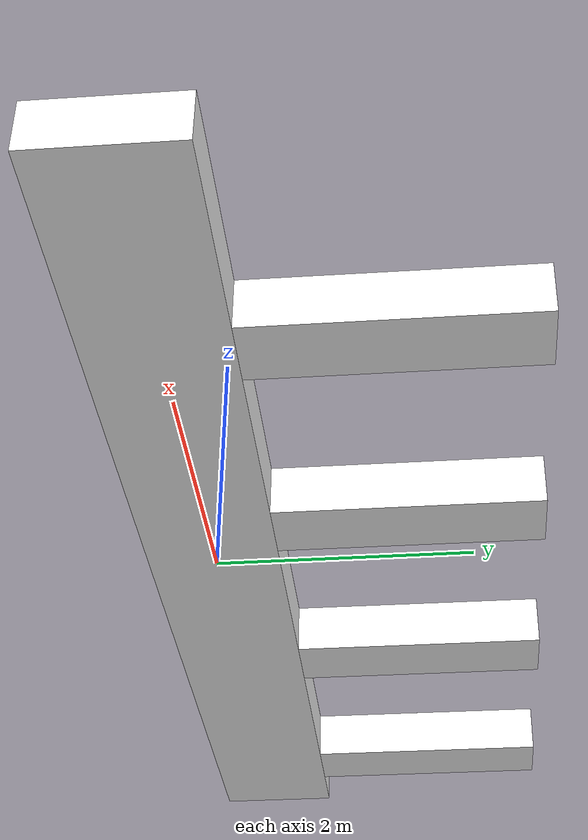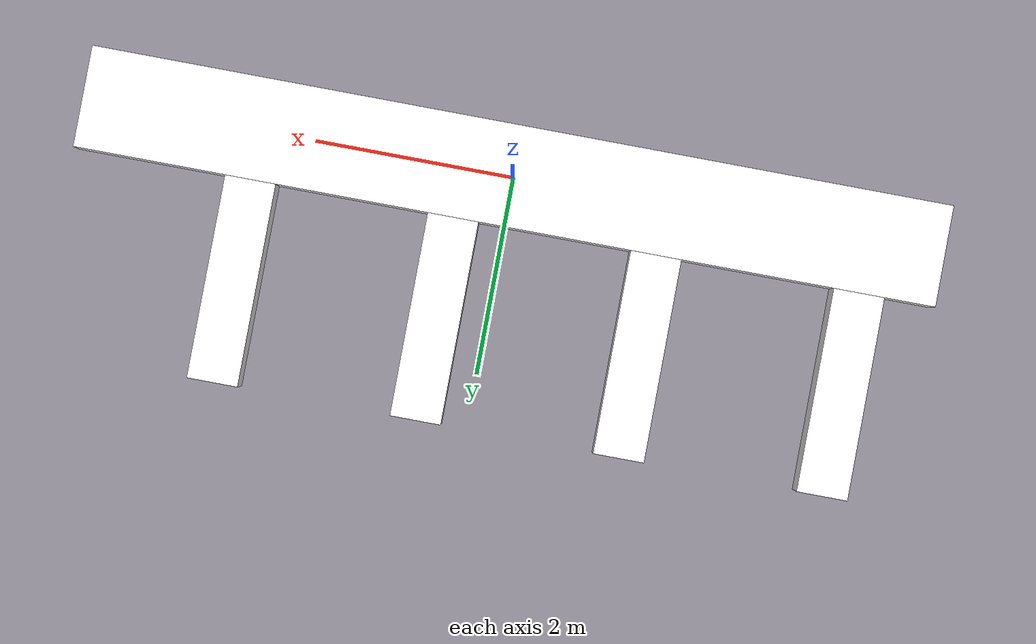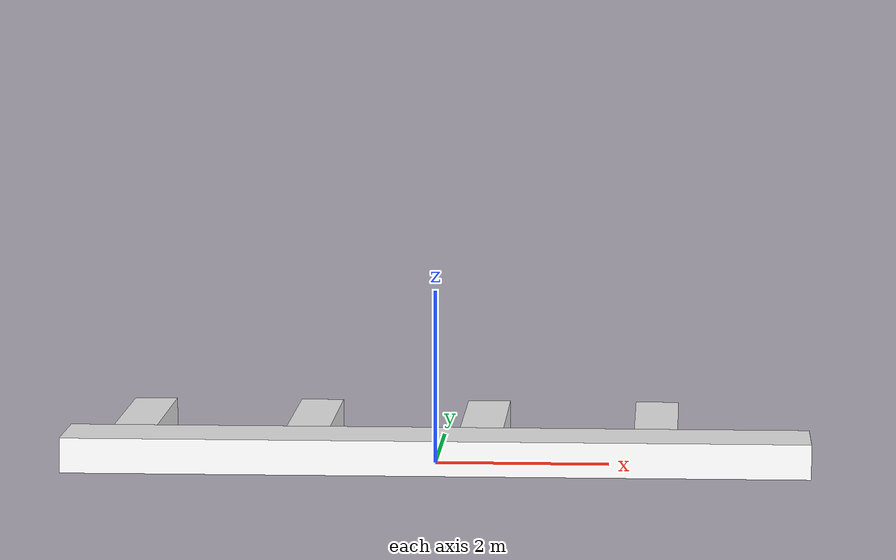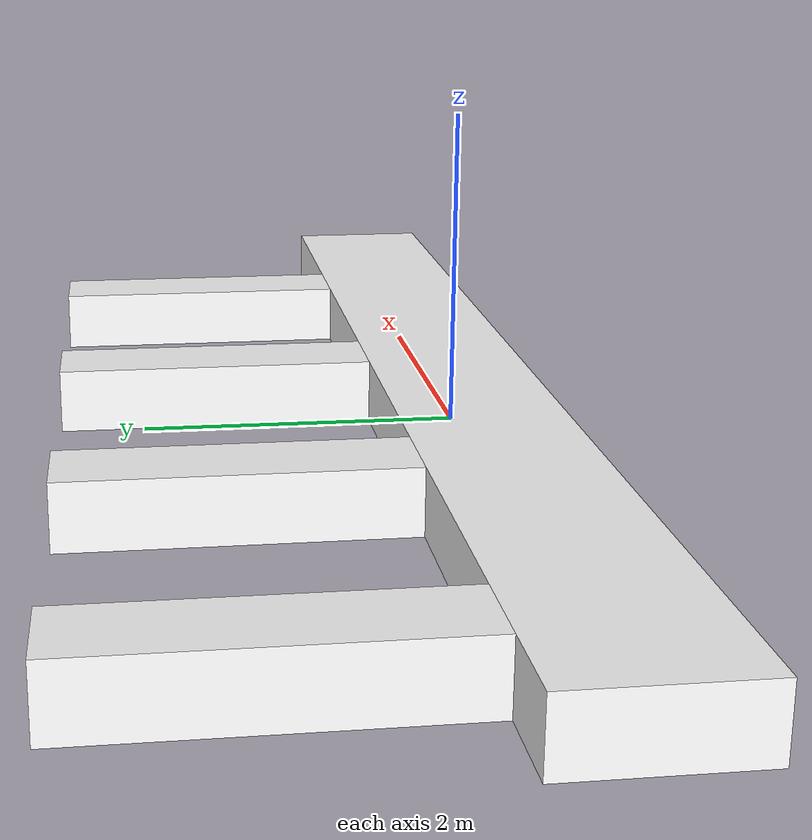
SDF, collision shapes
<?xml version="1.0"?>
<sdf version="1.9">
  <model name="roboboat_dock_s">
    <static>true</static>
    <link name="link">
      <collision name="pier_collision">
        <pose>0 0 0.127 0 0 0</pose>
        <geometry>
          <box><size>8.636 1.016 0.4064</size></box>
        </geometry>
      </collision>
      <collision name="tine_0_collision">
        <pose>-3.556 1.524 0.127 0 0 0</pose>
        <geometry>
          <box><size>0.508 2.032 0.4064</size></box>
        </geometry>
      </collision>
      <collision name="tine_1_collision">
        <pose>-1.524 1.524 0.127 0 0 0</pose>
        <geometry>
          <box><size>0.508 2.032 0.4064</size></box>
        </geometry>
      </collision>
      <collision name="tine_2_collision">
        <pose>0.508 1.524 0.127 0 0 0</pose>
        <geometry>
          <box><size>0.508 2.032 0.4064</size></box>
        </geometry>
      </collision>
      <collision name="tine_3_collision">
        <pose>2.54 1.524 0.127 0 0 0</pose>
        <geometry>
          <box><size>0.508 2.032 0.4064</size></box>
        </geometry>
      </collision>
      <visual name="cube_0">
        <pose>-4.064 -0.254 0.3302 0 0 0</pose>
        <geometry>
          <mesh>
            <uri>model://roboboat_dock_s/meshes/dock_cube.dae</uri>
            <scale>1.016 1.016 1.0015</scale>
          </mesh>
        </geometry>
            <material>
              <diffuse>1.0 1.0 1.0</diffuse>
              <specular>1.0 1.0 1.0</specular>
              <pbr>
                <metal>
                  <albedo_map>model://dock_block_4x4/mesh/DockCubes_Albedo.png</albedo_map>
                  <normal_map>model://dock_block_4x4/mesh/DockCubes_Normal.png</normal_map>
                  <roughness_map>model://dock_block_4x4/mesh/DockCubes_Roughness.png</roughness_map>
                  <metalness_map>model://dock_block_4x4/mesh/DockCubes_Metalness.png</metalness_map>
                </metal>
              </pbr>
            </material>
      </visual>
      <visual name="cube_1">
        <pose>-4.064 0.254 0.3302 0 0 0</pose>
        <geometry>
          <mesh>
            <uri>model://roboboat_dock_s/meshes/dock_cube.dae</uri>
            <scale>1.016 1.016 1.0015</scale>
          </mesh>
        </geometry>
            <material>
              <diffuse>1.0 1.0 1.0</diffuse>
              <specular>1.0 1.0 1.0</specular>
              <pbr>
                <metal>
                  <albedo_map>model://dock_block_4x4/mesh/DockCubes_Albedo.png</albedo_map>
                  <normal_map>model://dock_block_4x4/mesh/DockCubes_Normal.png</normal_map>
                  <roughness_map>model://dock_block_4x4/mesh/DockCubes_Roughness.png</roughness_map>
                  <metalness_map>model://dock_block_4x4/mesh/DockCubes_Metalness.png</metalness_map>
                </metal>
              </pbr>
            </material>
      </visual>
      <visual name="cube_2">
        <pose>-3.556 -0.254 0.3302 0 0 0</pose>
        <geometry>
          <mesh>
            <uri>model://roboboat_dock_s/meshes/dock_cube.dae</uri>
            <scale>1.016 1.016 1.0015</scale>
          </mesh>
        </geometry>
            <material>
              <diffuse>1.0 1.0 1.0</diffuse>
              <specular>1.0 1.0 1.0</specular>
              <pbr>
                <metal>
                  <albedo_map>model://dock_block_4x4/mesh/DockCubes_Albedo.png</albedo_map>
                  <normal_map>model://dock_block_4x4/mesh/DockCubes_Normal.png</normal_map>
                  <roughness_map>model://dock_block_4x4/mesh/DockCubes_Roughness.png</roughness_map>
                  <metalness_map>model://dock_block_4x4/mesh/DockCubes_Metalness.png</metalness_map>
                </metal>
              </pbr>
            </material>
      </visual>
      <visual name="cube_3">
        <pose>-3.556 0.254 0.3302 0 0 0</pose>
        <geometry>
          <mesh>
            <uri>model://roboboat_dock_s/meshes/dock_cube.dae</uri>
            <scale>1.016 1.016 1.0015</scale>
          </mesh>
        </geometry>
            <material>
              <diffuse>1.0 1.0 1.0</diffuse>
              <specular>1.0 1.0 1.0</specular>
              <pbr>
                <metal>
                  <albedo_map>model://dock_block_4x4/mesh/DockCubes_Albedo.png</albedo_map>
                  <normal_map>model://dock_block_4x4/mesh/DockCubes_Normal.png</normal_map>
                  <roughness_map>model://dock_block_4x4/mesh/DockCubes_Roughness.png</roughness_map>
                  <metalness_map>model://dock_block_4x4/mesh/DockCubes_Metalness.png</metalness_map>
                </metal>
              </pbr>
            </material>
      </visual>
      <visual name="cube_4">
        <pose>-3.048 -0.254 0.3302 0 0 0</pose>
        <geometry>
          <mesh>
            <uri>model://roboboat_dock_s/meshes/dock_cube.dae</uri>
            <scale>1.016 1.016 1.0015</scale>
          </mesh>
        </geometry>
            <material>
              <diffuse>1.0 1.0 1.0</diffuse>
              <specular>1.0 1.0 1.0</specular>
              <pbr>
                <metal>
                  <albedo_map>model://dock_block_4x4/mesh/DockCubes_Albedo.png</albedo_map>
                  <normal_map>model://dock_block_4x4/mesh/DockCubes_Normal.png</normal_map>
                  <roughness_map>model://dock_block_4x4/mesh/DockCubes_Roughness.png</roughness_map>
                  <metalness_map>model://dock_block_4x4/mesh/DockCubes_Metalness.png</metalness_map>
                </metal>
              </pbr>
            </material>
      </visual>
      <visual name="cube_5">
        <pose>-3.048 0.254 0.3302 0 0 0</pose>
        <geometry>
          <mesh>
            <uri>model://roboboat_dock_s/meshes/dock_cube.dae</uri>
            <scale>1.016 1.016 1.0015</scale>
          </mesh>
        </geometry>
            <material>
              <diffuse>1.0 1.0 1.0</diffuse>
              <specular>1.0 1.0 1.0</specular>
              <pbr>
                <metal>
                  <albedo_map>model://dock_block_4x4/mesh/DockCubes_Albedo.png</albedo_map>
                  <normal_map>model://dock_block_4x4/mesh/DockCubes_Normal.png</normal_map>
                  <roughness_map>model://dock_block_4x4/mesh/DockCubes_Roughness.png</roughness_map>
                  <metalness_map>model://dock_block_4x4/mesh/DockCubes_Metalness.png</metalness_map>
                </metal>
              </pbr>
            </material>
      </visual>
      <visual name="cube_6">
        <pose>-2.54 -0.254 0.3302 0 0 0</pose>
        <geometry>
          <mesh>
            <uri>model://roboboat_dock_s/meshes/dock_cube.dae</uri>
            <scale>1.016 1.016 1.0015</scale>
          </mesh>
        </geometry>
            <material>
              <diffuse>1.0 1.0 1.0</diffuse>
              <specular>1.0 1.0 1.0</specular>
              <pbr>
                <metal>
                  <albedo_map>model://dock_block_4x4/mesh/DockCubes_Albedo.png</albedo_map>
                  <normal_map>model://dock_block_4x4/mesh/DockCubes_Normal.png</normal_map>
                  <roughness_map>model://dock_block_4x4/mesh/DockCubes_Roughness.png</roughness_map>
                  <metalness_map>model://dock_block_4x4/mesh/DockCubes_Metalness.png</metalness_map>
                </metal>
              </pbr>
            </material>
      </visual>
      <visual name="cube_7">
        <pose>-2.54 0.254 0.3302 0 0 0</pose>
        <geometry>
          <mesh>
            <uri>model://roboboat_dock_s/meshes/dock_cube.dae</uri>
            <scale>1.016 1.016 1.0015</scale>
          </mesh>
        </geometry>
            <material>
              <diffuse>1.0 1.0 1.0</diffuse>
              <specular>1.0 1.0 1.0</specular>
              <pbr>
                <metal>
                  <albedo_map>model://dock_block_4x4/mesh/DockCubes_Albedo.png</albedo_map>
                  <normal_map>model://dock_block_4x4/mesh/DockCubes_Normal.png</normal_map>
                  <roughness_map>model://dock_block_4x4/mesh/DockCubes_Roughness.png</roughness_map>
                  <metalness_map>model://dock_block_4x4/mesh/DockCubes_Metalness.png</metalness_map>
                </metal>
              </pbr>
            </material>
      </visual>
      <visual name="cube_8">
        <pose>-2.032 -0.254 0.3302 0 0 0</pose>
        <geometry>
          <mesh>
            <uri>model://roboboat_dock_s/meshes/dock_cube.dae</uri>
            <scale>1.016 1.016 1.0015</scale>
          </mesh>
        </geometry>
            <material>
              <diffuse>1.0 1.0 1.0</diffuse>
              <specular>1.0 1.0 1.0</specular>
              <pbr>
                <metal>
                  <albedo_map>model://dock_block_4x4/mesh/DockCubes_Albedo.png</albedo_map>
                  <normal_map>model://dock_block_4x4/mesh/DockCubes_Normal.png</normal_map>
                  <roughness_map>model://dock_block_4x4/mesh/DockCubes_Roughness.png</roughness_map>
                  <metalness_map>model://dock_block_4x4/mesh/DockCubes_Metalness.png</metalness_map>
                </metal>
              </pbr>
            </material>
      </visual>
      <visual name="cube_9">
        <pose>-2.032 0.254 0.3302 0 0 0</pose>
        <geometry>
          <mesh>
            <uri>model://roboboat_dock_s/meshes/dock_cube.dae</uri>
            <scale>1.016 1.016 1.0015</scale>
          </mesh>
        </geometry>
            <material>
              <diffuse>1.0 1.0 1.0</diffuse>
              <specular>1.0 1.0 1.0</specular>
              <pbr>
                <metal>
                  <albedo_map>model://dock_block_4x4/mesh/DockCubes_Albedo.png</albedo_map>
                  <normal_map>model://dock_block_4x4/mesh/DockCubes_Normal.png</normal_map>
                  <roughness_map>model://dock_block_4x4/mesh/DockCubes_Roughness.png</roughness_map>
                  <metalness_map>model://dock_block_4x4/mesh/DockCubes_Metalness.png</metalness_map>
                </metal>
              </pbr>
            </material>
      </visual>
      <visual name="cube_10">
        <pose>-1.524 -0.254 0.3302 0 0 0</pose>
        <geometry>
          <mesh>
            <uri>model://roboboat_dock_s/meshes/dock_cube.dae</uri>
            <scale>1.016 1.016 1.0015</scale>
          </mesh>
        </geometry>
            <material>
              <diffuse>1.0 1.0 1.0</diffuse>
              <specular>1.0 1.0 1.0</specular>
              <pbr>
                <metal>
                  <albedo_map>model://dock_block_4x4/mesh/DockCubes_Albedo.png</albedo_map>
                  <normal_map>model://dock_block_4x4/mesh/DockCubes_Normal.png</normal_map>
                  <roughness_map>model://dock_block_4x4/mesh/DockCubes_Roughness.png</roughness_map>
                  <metalness_map>model://dock_block_4x4/mesh/DockCubes_Metalness.png</metalness_map>
                </metal>
              </pbr>
            </material>
      </visual>
      <visual name="cube_11">
        <pose>-1.524 0.254 0.3302 0 0 0</pose>
        <geometry>
          <mesh>
            <uri>model://roboboat_dock_s/meshes/dock_cube.dae</uri>
            <scale>1.016 1.016 1.0015</scale>
          </mesh>
        </geometry>
            <material>
              <diffuse>1.0 1.0 1.0</diffuse>
              <specular>1.0 1.0 1.0</specular>
              <pbr>
                <metal>
                  <albedo_map>model://dock_block_4x4/mesh/DockCubes_Albedo.png</albedo_map>
                  <normal_map>model://dock_block_4x4/mesh/DockCubes_Normal.png</normal_map>
                  <roughness_map>model://dock_block_4x4/mesh/DockCubes_Roughness.png</roughness_map>
                  <metalness_map>model://dock_block_4x4/mesh/DockCubes_Metalness.png</metalness_map>
                </metal>
              </pbr>
            </material>
      </visual>
      <visual name="cube_12">
        <pose>-1.016 -0.254 0.3302 0 0 0</pose>
        <geometry>
          <mesh>
            <uri>model://roboboat_dock_s/meshes/dock_cube.dae</uri>
            <scale>1.016 1.016 1.0015</scale>
          </mesh>
        </geometry>
            <material>
              <diffuse>1.0 1.0 1.0</diffuse>
              <specular>1.0 1.0 1.0</specular>
              <pbr>
                <metal>
                  <albedo_map>model://dock_block_4x4/mesh/DockCubes_Albedo.png</albedo_map>
                  <normal_map>model://dock_block_4x4/mesh/DockCubes_Normal.png</normal_map>
                  <roughness_map>model://dock_block_4x4/mesh/DockCubes_Roughness.png</roughness_map>
                  <metalness_map>model://dock_block_4x4/mesh/DockCubes_Metalness.png</metalness_map>
                </metal>
              </pbr>
            </material>
      </visual>
      <visual name="cube_13">
        <pose>-1.016 0.254 0.3302 0 0 0</pose>
        <geometry>
          <mesh>
            <uri>model://roboboat_dock_s/meshes/dock_cube.dae</uri>
            <scale>1.016 1.016 1.0015</scale>
          </mesh>
        </geometry>
            <material>
              <diffuse>1.0 1.0 1.0</diffuse>
              <specular>1.0 1.0 1.0</specular>
              <pbr>
                <metal>
                  <albedo_map>model://dock_block_4x4/mesh/DockCubes_Albedo.png</albedo_map>
                  <normal_map>model://dock_block_4x4/mesh/DockCubes_Normal.png</normal_map>
                  <roughness_map>model://dock_block_4x4/mesh/DockCubes_Roughness.png</roughness_map>
                  <metalness_map>model://dock_block_4x4/mesh/DockCubes_Metalness.png</metalness_map>
                </metal>
              </pbr>
            </material>
      </visual>
      <visual name="cube_14">
        <pose>-0.508 -0.254 0.3302 0 0 0</pose>
        <geometry>
          <mesh>
            <uri>model://roboboat_dock_s/meshes/dock_cube.dae</uri>
            <scale>1.016 1.016 1.0015</scale>
          </mesh>
        </geometry>
            <material>
              <diffuse>1.0 1.0 1.0</diffuse>
              <specular>1.0 1.0 1.0</specular>
              <pbr>
                <metal>
                  <albedo_map>model://dock_block_4x4/mesh/DockCubes_Albedo.png</albedo_map>
                  <normal_map>model://dock_block_4x4/mesh/DockCubes_Normal.png</normal_map>
                  <roughness_map>model://dock_block_4x4/mesh/DockCubes_Roughness.png</roughness_map>
                  <metalness_map>model://dock_block_4x4/mesh/DockCubes_Metalness.png</metalness_map>
                </metal>
              </pbr>
            </material>
      </visual>
      <visual name="cube_15">
        <pose>-0.508 0.254 0.3302 0 0 0</pose>
        <geometry>
          <mesh>
            <uri>model://roboboat_dock_s/meshes/dock_cube.dae</uri>
            <scale>1.016 1.016 1.0015</scale>
          </mesh>
        </geometry>
            <material>
              <diffuse>1.0 1.0 1.0</diffuse>
              <specular>1.0 1.0 1.0</specular>
              <pbr>
                <metal>
                  <albedo_map>model://dock_block_4x4/mesh/DockCubes_Albedo.png</albedo_map>
                  <normal_map>model://dock_block_4x4/mesh/DockCubes_Normal.png</normal_map>
                  <roughness_map>model://dock_block_4x4/mesh/DockCubes_Roughness.png</roughness_map>
                  <metalness_map>model://dock_block_4x4/mesh/DockCubes_Metalness.png</metalness_map>
                </metal>
              </pbr>
            </material>
      </visual>
      <visual name="cube_16">
        <pose>0 -0.254 0.3302 0 0 0</pose>
        <geometry>
          <mesh>
            <uri>model://roboboat_dock_s/meshes/dock_cube.dae</uri>
            <scale>1.016 1.016 1.0015</scale>
          </mesh>
        </geometry>
            <material>
              <diffuse>1.0 1.0 1.0</diffuse>
              <specular>1.0 1.0 1.0</specular>
              <pbr>
                <metal>
                  <albedo_map>model://dock_block_4x4/mesh/DockCubes_Albedo.png</albedo_map>
                  <normal_map>model://dock_block_4x4/mesh/DockCubes_Normal.png</normal_map>
                  <roughness_map>model://dock_block_4x4/mesh/DockCubes_Roughness.png</roughness_map>
                  <metalness_map>model://dock_block_4x4/mesh/DockCubes_Metalness.png</metalness_map>
                </metal>
              </pbr>
            </material>
      </visual>
      <visual name="cube_17">
        <pose>0 0.254 0.3302 0 0 0</pose>
        <geometry>
          <mesh>
            <uri>model://roboboat_dock_s/meshes/dock_cube.dae</uri>
            <scale>1.016 1.016 1.0015</scale>
          </mesh>
        </geometry>
            <material>
              <diffuse>1.0 1.0 1.0</diffuse>
              <specular>1.0 1.0 1.0</specular>
              <pbr>
                <metal>
                  <albedo_map>model://dock_block_4x4/mesh/DockCubes_Albedo.png</albedo_map>
                  <normal_map>model://dock_block_4x4/mesh/DockCubes_Normal.png</normal_map>
                  <roughness_map>model://dock_block_4x4/mesh/DockCubes_Roughness.png</roughness_map>
                  <metalness_map>model://dock_block_4x4/mesh/DockCubes_Metalness.png</metalness_map>
                </metal>
              </pbr>
            </material>
      </visual>
      <visual name="cube_18">
        <pose>0.508 -0.254 0.3302 0 0 0</pose>
        <geometry>
          <mesh>
            <uri>model://roboboat_dock_s/meshes/dock_cube.dae</uri>
            <scale>1.016 1.016 1.0015</scale>
          </mesh>
        </geometry>
            <material>
              <diffuse>1.0 1.0 1.0</diffuse>
              <specular>1.0 1.0 1.0</specular>
              <pbr>
                <metal>
                  <albedo_map>model://dock_block_4x4/mesh/DockCubes_Albedo.png</albedo_map>
                  <normal_map>model://dock_block_4x4/mesh/DockCubes_Normal.png</normal_map>
                  <roughness_map>model://dock_block_4x4/mesh/DockCubes_Roughness.png</roughness_map>
                  <metalness_map>model://dock_block_4x4/mesh/DockCubes_Metalness.png</metalness_map>
                </metal>
              </pbr>
            </material>
      </visual>
      <visual name="cube_19">
        <pose>0.508 0.254 0.3302 0 0 0</pose>
        <geometry>
          <mesh>
            <uri>model://roboboat_dock_s/meshes/dock_cube.dae</uri>
            <scale>1.016 1.016 1.0015</scale>
          </mesh>
        </geometry>
            <material>
              <diffuse>1.0 1.0 1.0</diffuse>
              <specular>1.0 1.0 1.0</specular>
              <pbr>
                <metal>
                  <albedo_map>model://dock_block_4x4/mesh/DockCubes_Albedo.png</albedo_map>
                  <normal_map>model://dock_block_4x4/mesh/DockCubes_Normal.png</normal_map>
                  <roughness_map>model://dock_block_4x4/mesh/DockCubes_Roughness.png</roughness_map>
                  <metalness_map>model://dock_block_4x4/mesh/DockCubes_Metalness.png</metalness_map>
                </metal>
              </pbr>
            </material>
      </visual>
      <visual name="cube_20">
        <pose>1.016 -0.254 0.3302 0 0 0</pose>
        <geometry>
          <mesh>
            <uri>model://roboboat_dock_s/meshes/dock_cube.dae</uri>
            <scale>1.016 1.016 1.0015</scale>
          </mesh>
        </geometry>
            <material>
              <diffuse>1.0 1.0 1.0</diffuse>
              <specular>1.0 1.0 1.0</specular>
              <pbr>
                <metal>
                  <albedo_map>model://dock_block_4x4/mesh/DockCubes_Albedo.png</albedo_map>
                  <normal_map>model://dock_block_4x4/mesh/DockCubes_Normal.png</normal_map>
                  <roughness_map>model://dock_block_4x4/mesh/DockCubes_Roughness.png</roughness_map>
                  <metalness_map>model://dock_block_4x4/mesh/DockCubes_Metalness.png</metalness_map>
                </metal>
              </pbr>
            </material>
      </visual>
      <visual name="cube_21">
        <pose>1.016 0.254 0.3302 0 0 0</pose>
        <geometry>
          <mesh>
            <uri>model://roboboat_dock_s/meshes/dock_cube.dae</uri>
            <scale>1.016 1.016 1.0015</scale>
          </mesh>
        </geometry>
            <material>
              <diffuse>1.0 1.0 1.0</diffuse>
              <specular>1.0 1.0 1.0</specular>
              <pbr>
                <metal>
                  <albedo_map>model://dock_block_4x4/mesh/DockCubes_Albedo.png</albedo_map>
                  <normal_map>model://dock_block_4x4/mesh/DockCubes_Normal.png</normal_map>
                  <roughness_map>model://dock_block_4x4/mesh/DockCubes_Roughness.png</roughness_map>
                  <metalness_map>model://dock_block_4x4/mesh/DockCubes_Metalness.png</metalness_map>
                </metal>
              </pbr>
            </material>
      </visual>
      <visual name="cube_22">
        <pose>1.524 -0.254 0.3302 0 0 0</pose>
        <geometry>
          <mesh>
            <uri>model://roboboat_dock_s/meshes/dock_cube.dae</uri>
            <scale>1.016 1.016 1.0015</scale>
          </mesh>
        </geometry>
            <material>
              <diffuse>1.0 1.0 1.0</diffuse>
              <specular>1.0 1.0 1.0</specular>
              <pbr>
                <metal>
                  <albedo_map>model://dock_block_4x4/mesh/DockCubes_Albedo.png</albedo_map>
                  <normal_map>model://dock_block_4x4/mesh/DockCubes_Normal.png</normal_map>
                  <roughness_map>model://dock_block_4x4/mesh/DockCubes_Roughness.png</roughness_map>
                  <metalness_map>model://dock_block_4x4/mesh/DockCubes_Metalness.png</metalness_map>
                </metal>
              </pbr>
            </material>
      </visual>
      <visual name="cube_23">
        <pose>1.524 0.254 0.3302 0 0 0</pose>
        <geometry>
          <mesh>
            <uri>model://roboboat_dock_s/meshes/dock_cube.dae</uri>
            <scale>1.016 1.016 1.0015</scale>
          </mesh>
        </geometry>
            <material>
              <diffuse>1.0 1.0 1.0</diffuse>
              <specular>1.0 1.0 1.0</specular>
              <pbr>
                <metal>
                  <albedo_map>model://dock_block_4x4/mesh/DockCubes_Albedo.png</albedo_map>
                  <normal_map>model://dock_block_4x4/mesh/DockCubes_Normal.png</normal_map>
                  <roughness_map>model://dock_block_4x4/mesh/DockCubes_Roughness.png</roughness_map>
                  <metalness_map>model://dock_block_4x4/mesh/DockCubes_Metalness.png</metalness_map>
                </metal>
              </pbr>
            </material>
      </visual>
      <visual name="cube_24">
        <pose>2.032 -0.254 0.3302 0 0 0</pose>
        <geometry>
          <mesh>
            <uri>model://roboboat_dock_s/meshes/dock_cube.dae</uri>
            <scale>1.016 1.016 1.0015</scale>
          </mesh>
        </geometry>
            <material>
              <diffuse>1.0 1.0 1.0</diffuse>
              <specular>1.0 1.0 1.0</specular>
              <pbr>
                <metal>
                  <albedo_map>model://dock_block_4x4/mesh/DockCubes_Albedo.png</albedo_map>
                  <normal_map>model://dock_block_4x4/mesh/DockCubes_Normal.png</normal_map>
                  <roughness_map>model://dock_block_4x4/mesh/DockCubes_Roughness.png</roughness_map>
                  <metalness_map>model://dock_block_4x4/mesh/DockCubes_Metalness.png</metalness_map>
                </metal>
              </pbr>
            </material>
      </visual>
      <visual name="cube_25">
        <pose>2.032 0.254 0.3302 0 0 0</pose>
        <geometry>
          <mesh>
            <uri>model://roboboat_dock_s/meshes/dock_cube.dae</uri>
            <scale>1.016 1.016 1.0015</scale>
          </mesh>
        </geometry>
            <material>
              <diffuse>1.0 1.0 1.0</diffuse>
              <specular>1.0 1.0 1.0</specular>
              <pbr>
                <metal>
                  <albedo_map>model://dock_block_4x4/mesh/DockCubes_Albedo.png</albedo_map>
                  <normal_map>model://dock_block_4x4/mesh/DockCubes_Normal.png</normal_map>
                  <roughness_map>model://dock_block_4x4/mesh/DockCubes_Roughness.png</roughness_map>
                  <metalness_map>model://dock_block_4x4/mesh/DockCubes_Metalness.png</metalness_map>
                </metal>
              </pbr>
            </material>
      </visual>
      <visual name="cube_26">
        <pose>2.54 -0.254 0.3302 0 0 0</pose>
        <geometry>
          <mesh>
            <uri>model://roboboat_dock_s/meshes/dock_cube.dae</uri>
            <scale>1.016 1.016 1.0015</scale>
          </mesh>
        </geometry>
            <material>
              <diffuse>1.0 1.0 1.0</diffuse>
              <specular>1.0 1.0 1.0</specular>
              <pbr>
                <metal>
                  <albedo_map>model://dock_block_4x4/mesh/DockCubes_Albedo.png</albedo_map>
                  <normal_map>model://dock_block_4x4/mesh/DockCubes_Normal.png</normal_map>
                  <roughness_map>model://dock_block_4x4/mesh/DockCubes_Roughness.png</roughness_map>
                  <metalness_map>model://dock_block_4x4/mesh/DockCubes_Metalness.png</metalness_map>
                </metal>
              </pbr>
            </material>
      </visual>
      <visual name="cube_27">
        <pose>2.54 0.254 0.3302 0 0 0</pose>
        <geometry>
          <mesh>
            <uri>model://roboboat_dock_s/meshes/dock_cube.dae</uri>
            <scale>1.016 1.016 1.0015</scale>
          </mesh>
        </geometry>
            <material>
              <diffuse>1.0 1.0 1.0</diffuse>
              <specular>1.0 1.0 1.0</specular>
              <pbr>
                <metal>
                  <albedo_map>model://dock_block_4x4/mesh/DockCubes_Albedo.png</albedo_map>
                  <normal_map>model://dock_block_4x4/mesh/DockCubes_Normal.png</normal_map>
                  <roughness_map>model://dock_block_4x4/mesh/DockCubes_Roughness.png</roughness_map>
                  <metalness_map>model://dock_block_4x4/mesh/DockCubes_Metalness.png</metalness_map>
                </metal>
              </pbr>
            </material>
      </visual>
      <visual name="cube_28">
        <pose>3.048 -0.254 0.3302 0 0 0</pose>
        <geometry>
          <mesh>
            <uri>model://roboboat_dock_s/meshes/dock_cube.dae</uri>
            <scale>1.016 1.016 1.0015</scale>
          </mesh>
        </geometry>
            <material>
              <diffuse>1.0 1.0 1.0</diffuse>
              <specular>1.0 1.0 1.0</specular>
              <pbr>
                <metal>
                  <albedo_map>model://dock_block_4x4/mesh/DockCubes_Albedo.png</albedo_map>
                  <normal_map>model://dock_block_4x4/mesh/DockCubes_Normal.png</normal_map>
                  <roughness_map>model://dock_block_4x4/mesh/DockCubes_Roughness.png</roughness_map>
                  <metalness_map>model://dock_block_4x4/mesh/DockCubes_Metalness.png</metalness_map>
                </metal>
              </pbr>
            </material>
      </visual>
      <visual name="cube_29">
        <pose>3.048 0.254 0.3302 0 0 0</pose>
        <geometry>
          <mesh>
            <uri>model://roboboat_dock_s/meshes/dock_cube.dae</uri>
            <scale>1.016 1.016 1.0015</scale>
          </mesh>
        </geometry>
            <material>
              <diffuse>1.0 1.0 1.0</diffuse>
              <specular>1.0 1.0 1.0</specular>
              <pbr>
                <metal>
                  <albedo_map>model://dock_block_4x4/mesh/DockCubes_Albedo.png</albedo_map>
                  <normal_map>model://dock_block_4x4/mesh/DockCubes_Normal.png</normal_map>
                  <roughness_map>model://dock_block_4x4/mesh/DockCubes_Roughness.png</roughness_map>
                  <metalness_map>model://dock_block_4x4/mesh/DockCubes_Metalness.png</metalness_map>
                </metal>
              </pbr>
            </material>
      </visual>
      <visual name="cube_30">
        <pose>3.556 -0.254 0.3302 0 0 0</pose>
        <geometry>
          <mesh>
            <uri>model://roboboat_dock_s/meshes/dock_cube.dae</uri>
            <scale>1.016 1.016 1.0015</scale>
          </mesh>
        </geometry>
            <material>
              <diffuse>1.0 1.0 1.0</diffuse>
              <specular>1.0 1.0 1.0</specular>
              <pbr>
                <metal>
                  <albedo_map>model://dock_block_4x4/mesh/DockCubes_Albedo.png</albedo_map>
                  <normal_map>model://dock_block_4x4/mesh/DockCubes_Normal.png</normal_map>
                  <roughness_map>model://dock_block_4x4/mesh/DockCubes_Roughness.png</roughness_map>
                  <metalness_map>model://dock_block_4x4/mesh/DockCubes_Metalness.png</metalness_map>
                </metal>
              </pbr>
            </material>
      </visual>
      <visual name="cube_31">
        <pose>3.556 0.254 0.3302 0 0 0</pose>
        <geometry>
          <mesh>
            <uri>model://roboboat_dock_s/meshes/dock_cube.dae</uri>
            <scale>1.016 1.016 1.0015</scale>
          </mesh>
        </geometry>
            <material>
              <diffuse>1.0 1.0 1.0</diffuse>
              <specular>1.0 1.0 1.0</specular>
              <pbr>
                <metal>
                  <albedo_map>model://dock_block_4x4/mesh/DockCubes_Albedo.png</albedo_map>
                  <normal_map>model://dock_block_4x4/mesh/DockCubes_Normal.png</normal_map>
                  <roughness_map>model://dock_block_4x4/mesh/DockCubes_Roughness.png</roughness_map>
                  <metalness_map>model://dock_block_4x4/mesh/DockCubes_Metalness.png</metalness_map>
                </metal>
              </pbr>
            </material>
      </visual>
      <visual name="cube_32">
        <pose>4.064 -0.254 0.3302 0 0 0</pose>
        <geometry>
          <mesh>
            <uri>model://roboboat_dock_s/meshes/dock_cube.dae</uri>
            <scale>1.016 1.016 1.0015</scale>
          </mesh>
        </geometry>
            <material>
              <diffuse>1.0 1.0 1.0</diffuse>
              <specular>1.0 1.0 1.0</specular>
              <pbr>
                <metal>
                  <albedo_map>model://dock_block_4x4/mesh/DockCubes_Albedo.png</albedo_map>
                  <normal_map>model://dock_block_4x4/mesh/DockCubes_Normal.png</normal_map>
                  <roughness_map>model://dock_block_4x4/mesh/DockCubes_Roughness.png</roughness_map>
                  <metalness_map>model://dock_block_4x4/mesh/DockCubes_Metalness.png</metalness_map>
                </metal>
              </pbr>
            </material>
      </visual>
      <visual name="cube_33">
        <pose>4.064 0.254 0.3302 0 0 0</pose>
        <geometry>
          <mesh>
            <uri>model://roboboat_dock_s/meshes/dock_cube.dae</uri>
            <scale>1.016 1.016 1.0015</scale>
          </mesh>
        </geometry>
            <material>
              <diffuse>1.0 1.0 1.0</diffuse>
              <specular>1.0 1.0 1.0</specular>
              <pbr>
                <metal>
                  <albedo_map>model://dock_block_4x4/mesh/DockCubes_Albedo.png</albedo_map>
                  <normal_map>model://dock_block_4x4/mesh/DockCubes_Normal.png</normal_map>
                  <roughness_map>model://dock_block_4x4/mesh/DockCubes_Roughness.png</roughness_map>
                  <metalness_map>model://dock_block_4x4/mesh/DockCubes_Metalness.png</metalness_map>
                </metal>
              </pbr>
            </material>
      </visual>
      <visual name="cube_34">
        <pose>-3.556 0.762 0.3302 0 0 0</pose>
        <geometry>
          <mesh>
            <uri>model://roboboat_dock_s/meshes/dock_cube.dae</uri>
            <scale>1.016 1.016 1.0015</scale>
          </mesh>
        </geometry>
            <material>
              <diffuse>1.0 1.0 1.0</diffuse>
              <specular>1.0 1.0 1.0</specular>
              <pbr>
                <metal>
                  <albedo_map>model://dock_block_4x4/mesh/DockCubes_Albedo.png</albedo_map>
                  <normal_map>model://dock_block_4x4/mesh/DockCubes_Normal.png</normal_map>
                  <roughness_map>model://dock_block_4x4/mesh/DockCubes_Roughness.png</roughness_map>
                  <metalness_map>model://dock_block_4x4/mesh/DockCubes_Metalness.png</metalness_map>
                </metal>
              </pbr>
            </material>
      </visual>
      <visual name="cube_35">
        <pose>-3.556 1.27 0.3302 0 0 0</pose>
        <geometry>
          <mesh>
            <uri>model://roboboat_dock_s/meshes/dock_cube.dae</uri>
            <scale>1.016 1.016 1.0015</scale>
          </mesh>
        </geometry>
            <material>
              <diffuse>1.0 1.0 1.0</diffuse>
              <specular>1.0 1.0 1.0</specular>
              <pbr>
                <metal>
                  <albedo_map>model://dock_block_4x4/mesh/DockCubes_Albedo.png</albedo_map>
                  <normal_map>model://dock_block_4x4/mesh/DockCubes_Normal.png</normal_map>
                  <roughness_map>model://dock_block_4x4/mesh/DockCubes_Roughness.png</roughness_map>
                  <metalness_map>model://dock_block_4x4/mesh/DockCubes_Metalness.png</metalness_map>
                </metal>
              </pbr>
            </material>
      </visual>
      <visual name="cube_36">
        <pose>-3.556 1.778 0.3302 0 0 0</pose>
        <geometry>
          <mesh>
            <uri>model://roboboat_dock_s/meshes/dock_cube.dae</uri>
            <scale>1.016 1.016 1.0015</scale>
          </mesh>
        </geometry>
            <material>
              <diffuse>1.0 1.0 1.0</diffuse>
              <specular>1.0 1.0 1.0</specular>
              <pbr>
                <metal>
                  <albedo_map>model://dock_block_4x4/mesh/DockCubes_Albedo.png</albedo_map>
                  <normal_map>model://dock_block_4x4/mesh/DockCubes_Normal.png</normal_map>
                  <roughness_map>model://dock_block_4x4/mesh/DockCubes_Roughness.png</roughness_map>
                  <metalness_map>model://dock_block_4x4/mesh/DockCubes_Metalness.png</metalness_map>
                </metal>
              </pbr>
            </material>
      </visual>
      <visual name="cube_37">
        <pose>-3.556 2.286 0.3302 0 0 0</pose>
        <geometry>
          <mesh>
            <uri>model://roboboat_dock_s/meshes/dock_cube.dae</uri>
            <scale>1.016 1.016 1.0015</scale>
          </mesh>
        </geometry>
            <material>
              <diffuse>1.0 1.0 1.0</diffuse>
              <specular>1.0 1.0 1.0</specular>
              <pbr>
                <metal>
                  <albedo_map>model://dock_block_4x4/mesh/DockCubes_Albedo.png</albedo_map>
                  <normal_map>model://dock_block_4x4/mesh/DockCubes_Normal.png</normal_map>
                  <roughness_map>model://dock_block_4x4/mesh/DockCubes_Roughness.png</roughness_map>
                  <metalness_map>model://dock_block_4x4/mesh/DockCubes_Metalness.png</metalness_map>
                </metal>
              </pbr>
            </material>
      </visual>
      <visual name="cube_38">
        <pose>-1.524 0.762 0.3302 0 0 0</pose>
        <geometry>
          <mesh>
            <uri>model://roboboat_dock_s/meshes/dock_cube.dae</uri>
            <scale>1.016 1.016 1.0015</scale>
          </mesh>
        </geometry>
            <material>
              <diffuse>1.0 1.0 1.0</diffuse>
              <specular>1.0 1.0 1.0</specular>
              <pbr>
                <metal>
                  <albedo_map>model://dock_block_4x4/mesh/DockCubes_Albedo.png</albedo_map>
                  <normal_map>model://dock_block_4x4/mesh/DockCubes_Normal.png</normal_map>
                  <roughness_map>model://dock_block_4x4/mesh/DockCubes_Roughness.png</roughness_map>
                  <metalness_map>model://dock_block_4x4/mesh/DockCubes_Metalness.png</metalness_map>
                </metal>
              </pbr>
            </material>
      </visual>
      <visual name="cube_39">
        <pose>-1.524 1.27 0.3302 0 0 0</pose>
        <geometry>
          <mesh>
            <uri>model://roboboat_dock_s/meshes/dock_cube.dae</uri>
            <scale>1.016 1.016 1.0015</scale>
          </mesh>
        </geometry>
            <material>
              <diffuse>1.0 1.0 1.0</diffuse>
              <specular>1.0 1.0 1.0</specular>
              <pbr>
                <metal>
                  <albedo_map>model://dock_block_4x4/mesh/DockCubes_Albedo.png</albedo_map>
                  <normal_map>model://dock_block_4x4/mesh/DockCubes_Normal.png</normal_map>
                  <roughness_map>model://dock_block_4x4/mesh/DockCubes_Roughness.png</roughness_map>
                  <metalness_map>model://dock_block_4x4/mesh/DockCubes_Metalness.png</metalness_map>
                </metal>
              </pbr>
            </material>
      </visual>
      <visual name="cube_40">
        <pose>-1.524 1.778 0.3302 0 0 0</pose>
        <geometry>
          <mesh>
            <uri>model://roboboat_dock_s/meshes/dock_cube.dae</uri>
            <scale>1.016 1.016 1.0015</scale>
          </mesh>
        </geometry>
            <material>
              <diffuse>1.0 1.0 1.0</diffuse>
              <specular>1.0 1.0 1.0</specular>
              <pbr>
                <metal>
                  <albedo_map>model://dock_block_4x4/mesh/DockCubes_Albedo.png</albedo_map>
                  <normal_map>model://dock_block_4x4/mesh/DockCubes_Normal.png</normal_map>
                  <roughness_map>model://dock_block_4x4/mesh/DockCubes_Roughness.png</roughness_map>
                  <metalness_map>model://dock_block_4x4/mesh/DockCubes_Metalness.png</metalness_map>
                </metal>
              </pbr>
            </material>
      </visual>
      <visual name="cube_41">
        <pose>-1.524 2.286 0.3302 0 0 0</pose>
        <geometry>
          <mesh>
            <uri>model://roboboat_dock_s/meshes/dock_cube.dae</uri>
            <scale>1.016 1.016 1.0015</scale>
          </mesh>
        </geometry>
            <material>
              <diffuse>1.0 1.0 1.0</diffuse>
              <specular>1.0 1.0 1.0</specular>
              <pbr>
                <metal>
                  <albedo_map>model://dock_block_4x4/mesh/DockCubes_Albedo.png</albedo_map>
                  <normal_map>model://dock_block_4x4/mesh/DockCubes_Normal.png</normal_map>
                  <roughness_map>model://dock_block_4x4/mesh/DockCubes_Roughness.png</roughness_map>
                  <metalness_map>model://dock_block_4x4/mesh/DockCubes_Metalness.png</metalness_map>
                </metal>
              </pbr>
            </material>
      </visual>
      <visual name="cube_42">
        <pose>0.508 0.762 0.3302 0 0 0</pose>
        <geometry>
          <mesh>
            <uri>model://roboboat_dock_s/meshes/dock_cube.dae</uri>
            <scale>1.016 1.016 1.0015</scale>
          </mesh>
        </geometry>
            <material>
              <diffuse>1.0 1.0 1.0</diffuse>
              <specular>1.0 1.0 1.0</specular>
              <pbr>
                <metal>
                  <albedo_map>model://dock_block_4x4/mesh/DockCubes_Albedo.png</albedo_map>
                  <normal_map>model://dock_block_4x4/mesh/DockCubes_Normal.png</normal_map>
                  <roughness_map>model://dock_block_4x4/mesh/DockCubes_Roughness.png</roughness_map>
                  <metalness_map>model://dock_block_4x4/mesh/DockCubes_Metalness.png</metalness_map>
                </metal>
              </pbr>
            </material>
      </visual>
      <visual name="cube_43">
        <pose>0.508 1.27 0.3302 0 0 0</pose>
        <geometry>
          <mesh>
            <uri>model://roboboat_dock_s/meshes/dock_cube.dae</uri>
            <scale>1.016 1.016 1.0015</scale>
          </mesh>
        </geometry>
            <material>
              <diffuse>1.0 1.0 1.0</diffuse>
              <specular>1.0 1.0 1.0</specular>
              <pbr>
                <metal>
                  <albedo_map>model://dock_block_4x4/mesh/DockCubes_Albedo.png</albedo_map>
                  <normal_map>model://dock_block_4x4/mesh/DockCubes_Normal.png</normal_map>
                  <roughness_map>model://dock_block_4x4/mesh/DockCubes_Roughness.png</roughness_map>
                  <metalness_map>model://dock_block_4x4/mesh/DockCubes_Metalness.png</metalness_map>
                </metal>
              </pbr>
            </material>
      </visual>
      <visual name="cube_44">
        <pose>0.508 1.778 0.3302 0 0 0</pose>
        <geometry>
          <mesh>
            <uri>model://roboboat_dock_s/meshes/dock_cube.dae</uri>
            <scale>1.016 1.016 1.0015</scale>
          </mesh>
        </geometry>
            <material>
              <diffuse>1.0 1.0 1.0</diffuse>
              <specular>1.0 1.0 1.0</specular>
              <pbr>
                <metal>
                  <albedo_map>model://dock_block_4x4/mesh/DockCubes_Albedo.png</albedo_map>
                  <normal_map>model://dock_block_4x4/mesh/DockCubes_Normal.png</normal_map>
                  <roughness_map>model://dock_block_4x4/mesh/DockCubes_Roughness.png</roughness_map>
                  <metalness_map>model://dock_block_4x4/mesh/DockCubes_Metalness.png</metalness_map>
                </metal>
              </pbr>
            </material>
      </visual>
      <visual name="cube_45">
        <pose>0.508 2.286 0.3302 0 0 0</pose>
        <geometry>
          <mesh>
            <uri>model://roboboat_dock_s/meshes/dock_cube.dae</uri>
            <scale>1.016 1.016 1.0015</scale>
          </mesh>
        </geometry>
            <material>
              <diffuse>1.0 1.0 1.0</diffuse>
              <specular>1.0 1.0 1.0</specular>
              <pbr>
                <metal>
                  <albedo_map>model://dock_block_4x4/mesh/DockCubes_Albedo.png</albedo_map>
                  <normal_map>model://dock_block_4x4/mesh/DockCubes_Normal.png</normal_map>
                  <roughness_map>model://dock_block_4x4/mesh/DockCubes_Roughness.png</roughness_map>
                  <metalness_map>model://dock_block_4x4/mesh/DockCubes_Metalness.png</metalness_map>
                </metal>
              </pbr>
            </material>
      </visual>
      <visual name="cube_46">
        <pose>2.54 0.762 0.3302 0 0 0</pose>
        <geometry>
          <mesh>
            <uri>model://roboboat_dock_s/meshes/dock_cube.dae</uri>
            <scale>1.016 1.016 1.0015</scale>
          </mesh>
        </geometry>
            <material>
              <diffuse>1.0 1.0 1.0</diffuse>
              <specular>1.0 1.0 1.0</specular>
              <pbr>
                <metal>
                  <albedo_map>model://dock_block_4x4/mesh/DockCubes_Albedo.png</albedo_map>
                  <normal_map>model://dock_block_4x4/mesh/DockCubes_Normal.png</normal_map>
                  <roughness_map>model://dock_block_4x4/mesh/DockCubes_Roughness.png</roughness_map>
                  <metalness_map>model://dock_block_4x4/mesh/DockCubes_Metalness.png</metalness_map>
                </metal>
              </pbr>
            </material>
      </visual>
      <visual name="cube_47">
        <pose>2.54 1.27 0.3302 0 0 0</pose>
        <geometry>
          <mesh>
            <uri>model://roboboat_dock_s/meshes/dock_cube.dae</uri>
            <scale>1.016 1.016 1.0015</scale>
          </mesh>
        </geometry>
            <material>
              <diffuse>1.0 1.0 1.0</diffuse>
              <specular>1.0 1.0 1.0</specular>
              <pbr>
                <metal>
                  <albedo_map>model://dock_block_4x4/mesh/DockCubes_Albedo.png</albedo_map>
                  <normal_map>model://dock_block_4x4/mesh/DockCubes_Normal.png</normal_map>
                  <roughness_map>model://dock_block_4x4/mesh/DockCubes_Roughness.png</roughness_map>
                  <metalness_map>model://dock_block_4x4/mesh/DockCubes_Metalness.png</metalness_map>
                </metal>
              </pbr>
            </material>
      </visual>
      <visual name="cube_48">
        <pose>2.54 1.778 0.3302 0 0 0</pose>
        <geometry>
          <mesh>
            <uri>model://roboboat_dock_s/meshes/dock_cube.dae</uri>
            <scale>1.016 1.016 1.0015</scale>
          </mesh>
        </geometry>
            <material>
              <diffuse>1.0 1.0 1.0</diffuse>
              <specular>1.0 1.0 1.0</specular>
              <pbr>
                <metal>
                  <albedo_map>model://dock_block_4x4/mesh/DockCubes_Albedo.png</albedo_map>
                  <normal_map>model://dock_block_4x4/mesh/DockCubes_Normal.png</normal_map>
                  <roughness_map>model://dock_block_4x4/mesh/DockCubes_Roughness.png</roughness_map>
                  <metalness_map>model://dock_block_4x4/mesh/DockCubes_Metalness.png</metalness_map>
                </metal>
              </pbr>
            </material>
      </visual>
      <visual name="cube_49">
        <pose>2.54 2.286 0.3302 0 0 0</pose>
        <geometry>
          <mesh>
            <uri>model://roboboat_dock_s/meshes/dock_cube.dae</uri>
            <scale>1.016 1.016 1.0015</scale>
          </mesh>
        </geometry>
            <material>
              <diffuse>1.0 1.0 1.0</diffuse>
              <specular>1.0 1.0 1.0</specular>
              <pbr>
                <metal>
                  <albedo_map>model://dock_block_4x4/mesh/DockCubes_Albedo.png</albedo_map>
                  <normal_map>model://dock_block_4x4/mesh/DockCubes_Normal.png</normal_map>
                  <roughness_map>model://dock_block_4x4/mesh/DockCubes_Roughness.png</roughness_map>
                  <metalness_map>model://dock_block_4x4/mesh/DockCubes_Metalness.png</metalness_map>
                </metal>
              </pbr>
            </material>
      </visual>
      <visual name="pier_walls">
        <pose>0 0 0.1202 0 0 0</pose>
        <geometry>
          <box><size>8.606 0.986 0.34</size></box>
        </geometry>
        <material>
          <ambient>0.3609 0.3232 0.2836 1</ambient>
          <diffuse>0.3609 0.3232 0.2836 1</diffuse>
          <specular>0.1 0.1 0.1 1</specular>
        </material>
      </visual>
      <visual name="tine_0_walls">
        <pose>-3.556 1.524 0.1202 0 0 0</pose>
        <geometry>
          <box><size>0.478 2.002 0.34</size></box>
        </geometry>
        <material>
          <ambient>0.3609 0.3232 0.2836 1</ambient>
          <diffuse>0.3609 0.3232 0.2836 1</diffuse>
          <specular>0.1 0.1 0.1 1</specular>
        </material>
      </visual>
      <visual name="tine_1_walls">
        <pose>-1.524 1.524 0.1202 0 0 0</pose>
        <geometry>
          <box><size>0.478 2.002 0.34</size></box>
        </geometry>
        <material>
          <ambient>0.3609 0.3232 0.2836 1</ambient>
          <diffuse>0.3609 0.3232 0.2836 1</diffuse>
          <specular>0.1 0.1 0.1 1</specular>
        </material>
      </visual>
      <visual name="tine_2_walls">
        <pose>0.508 1.524 0.1202 0 0 0</pose>
        <geometry>
          <box><size>0.478 2.002 0.34</size></box>
        </geometry>
        <material>
          <ambient>0.3609 0.3232 0.2836 1</ambient>
          <diffuse>0.3609 0.3232 0.2836 1</diffuse>
          <specular>0.1 0.1 0.1 1</specular>
        </material>
      </visual>
      <visual name="tine_3_walls">
        <pose>2.54 1.524 0.1202 0 0 0</pose>
        <geometry>
          <box><size>0.478 2.002 0.34</size></box>
        </geometry>
        <material>
          <ambient>0.3609 0.3232 0.2836 1</ambient>
          <diffuse>0.3609 0.3232 0.2836 1</diffuse>
          <specular>0.1 0.1 0.1 1</specular>
        </material>
      </visual>
      <visual name="banner_1_board">
        <pose>1.524 0 0.635 0 0 0</pose>
        <geometry>
          <box><size>0.6096 0.005 0.6096</size></box>
        </geometry>
        <material>
          <ambient>0.8276 0.8276 0.8276 1</ambient>
          <diffuse>0.8276 0.8276 0.8276 1</diffuse>
          <specular>0.1 0.1 0.1 1</specular>
        </material>
      </visual>
      <visual name="banner_1">
        <pose>1.524 0.003 0.635 0 0 3.1416</pose>
        <geometry>
          <mesh>
            <uri>model://roboboat_dock_s/meshes/banner_1.dae</uri>
          </mesh>
        </geometry>
      </visual>
      <visual name="banner_2_board">
        <pose>-0.508 0 0.635 0 0 0</pose>
        <geometry>
          <box><size>0.6096 0.005 0.6096</size></box>
        </geometry>
        <material>
          <ambient>0.8276 0.8276 0.8276 1</ambient>
          <diffuse>0.8276 0.8276 0.8276 1</diffuse>
          <specular>0.1 0.1 0.1 1</specular>
        </material>
      </visual>
      <visual name="banner_2">
        <pose>-0.508 0.003 0.635 0 0 3.1416</pose>
        <geometry>
          <mesh>
            <uri>model://roboboat_dock_s/meshes/banner_2.dae</uri>
          </mesh>
        </geometry>
      </visual>
      <visual name="banner_3_board">
        <pose>-2.54 0 0.635 0 0 0</pose>
        <geometry>
          <box><size>0.6096 0.005 0.6096</size></box>
        </geometry>
        <material>
          <ambient>0.8276 0.8276 0.8276 1</ambient>
          <diffuse>0.8276 0.8276 0.8276 1</diffuse>
          <specular>0.1 0.1 0.1 1</specular>
        </material>
      </visual>
      <visual name="banner_3">
        <pose>-2.54 0.003 0.635 0 0 3.1416</pose>
        <geometry>
          <mesh>
            <uri>model://roboboat_dock_s/meshes/banner_3.dae</uri>
          </mesh>
        </geometry>
      </visual>
    </link>
    <plugin filename="gz-sim-label-system" name="gz::sim::systems::Label">
      <label>50</label>
    </plugin>
  </model>
</sdf>
